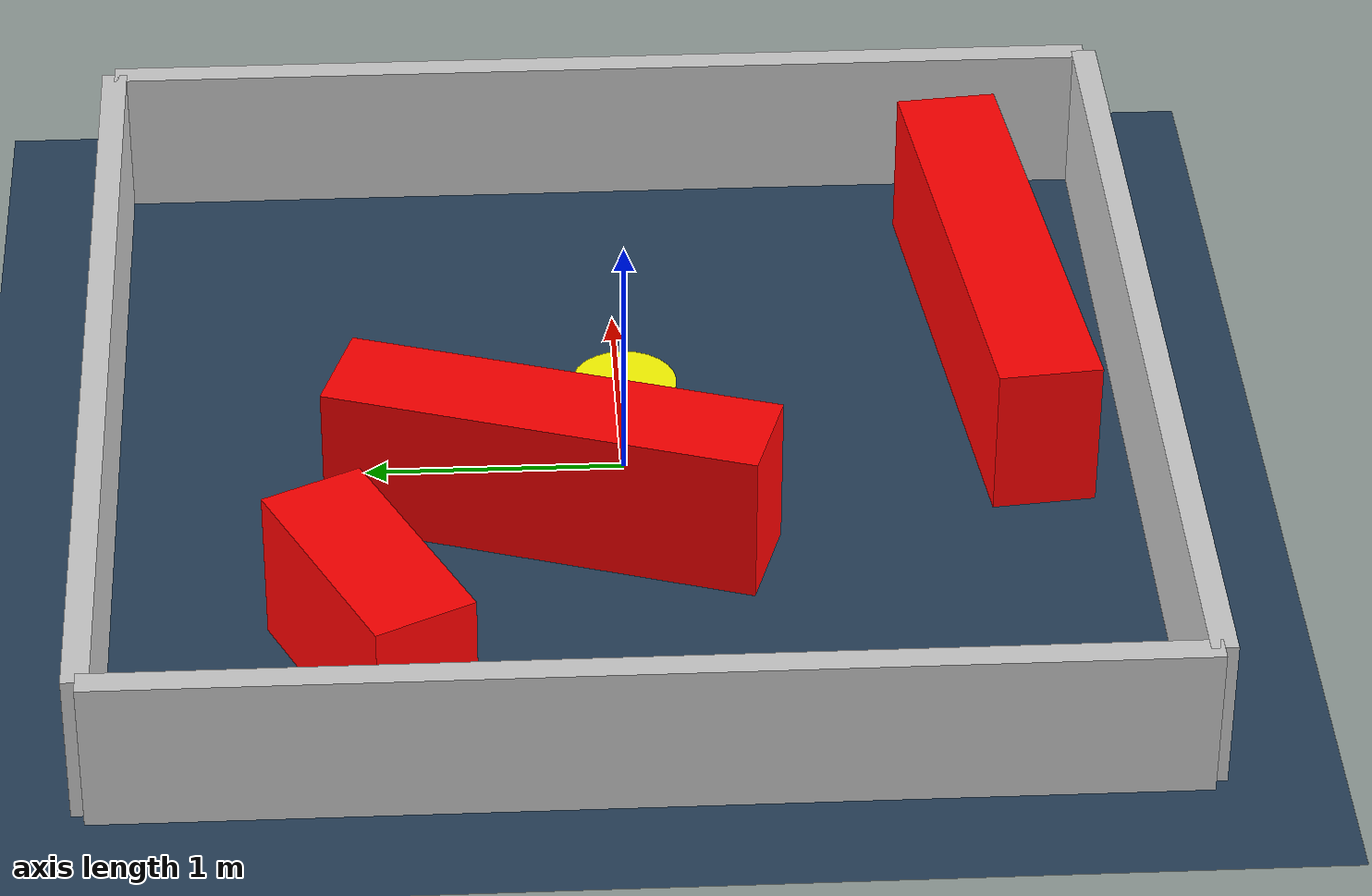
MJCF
<?xml version="1.0" ?>
<mujoco model="generated_environment">
  <option timestep="0.01" integrator="RK4" cone="elliptic"/>
  <default>
    <geom density="1"/>
  </default>
  <asset>
    <texture builtin="gradient" height="3072" rgb1="0.3 0.5 0.7" rgb2="0 0 0" type="skybox" width="512"/>
    <texture builtin="checker" height="300" mark="edge" markrgb="0.8 0.8 0.8" name="groundplane" rgb1="0.2 0.3 0.4" rgb2="0.1 0.2 0.3" type="2d" width="300"/>
    <material name="groundplane" reflectance="0.2" texrepeat="5 5" texture="groundplane" texuniform="true"/>
    <material name="robot" rgba="0.0 1.0 0.0 1"/>
  </asset>
  <worldbody>
    <light dir="0 0 -1" directional="true" pos="0 0 1.5"/>
    <geom condim="4" friction="1.0 0.005 0.001" material="groundplane" name="floor" size="0 0 0.05" type="plane"/>
    <body name="walls">
      <geom name="wall_1" condim="4" pos="-2.0 0.0 0.3" rgba="0.800000011920929 0.800000011920929 0.800000011920929 1.0" size="0.05 2.0 0.3" type="box"/>
      <geom name="wall_2" condim="4" pos="2.0 0.0 0.3" rgba="0.800000011920929 0.800000011920929 0.800000011920929 1.0" size="0.05 2.0 0.3" type="box"/>
      <geom name="wall_3" condim="4" pos="0.0 -2.0 0.3" rgba="0.800000011920929 0.800000011920929 0.800000011920929 1.0" size="2.0 0.05 0.3" type="box"/>
      <geom name="wall_4" condim="4" pos="0.0 2.0 0.3" rgba="0.800000011920929 0.800000011920929 0.800000011920929 1.0" size="2.0 0.05 0.3" type="box"/>
    </body>
    <body name="robot">
      <joint name="joint_x" type="slide" pos="0 0 0" axis="1 0 0"/>
      <joint name="joint_y" type="slide" pos="0 0 0" axis="0 1 0"/>
      <geom name="robot" type="sphere" pos="0.3 0.0 0.2" size="0.05" mass="5." friction="1.0 0.005 0.0001" condim="4" rgba="0.5 0.5 0.5 1.0"/>
      <site name="sensor_ball"/>
    </body>
    <body name="obstacle_movable_1">
      <geom name="obstacle_movable_1" condim="4" pos="0.0 0.0 0.2" euler="0 0 0.0" friction="1.0 0.005 0.001" rgba="1.0 1.0 0.0 1.0" size="0.2 0.2 0.0" type="cylinder" mass="0.1"/>
      <joint type="free"/>
    </body>
    <body name="obstacle_2_static">
      <geom name="obstacle_2_static" condim="4" pos="-1.2892814431416972 0.9835038937199141 0.3" euler="0 0 26.333577108931014" friction="1.0 0.005 0.001" rgba="1 0 0 1" size="0.4599138026441494 0.2 0.3" type="box"/>
    </body>
    <body name="obstacle_3_static">
      <geom name="obstacle_3_static" condim="4" pos="-0.39693874550012065 0.2910601978088876 0.3" euler="0 0 72.03189657135007" friction="1.0 0.005 0.001" rgba="1 0 0 1" size="0.8423455754003235 0.2 0.3" type="box"/>
    </body>
    <body name="obstacle_4_static">
      <geom name="obstacle_4_static" condim="4" pos="0.6706566973041692 -1.4932820314974908 0.3" euler="0 0 5.7774923118771415" friction="1.0 0.005 0.001" rgba="1 0 0 1" size="0.9929999467253798 0.2 0.3" type="box"/>
    </body>
  </worldbody>
  <actuator>
    <motor name="actuator_x" joint="joint_x" gear="1" ctrlrange="-1 1"/>
    <motor name="actuator_y" joint="joint_y" gear="1" ctrlrange="-1 1"/>
  </actuator>
</mujoco>
